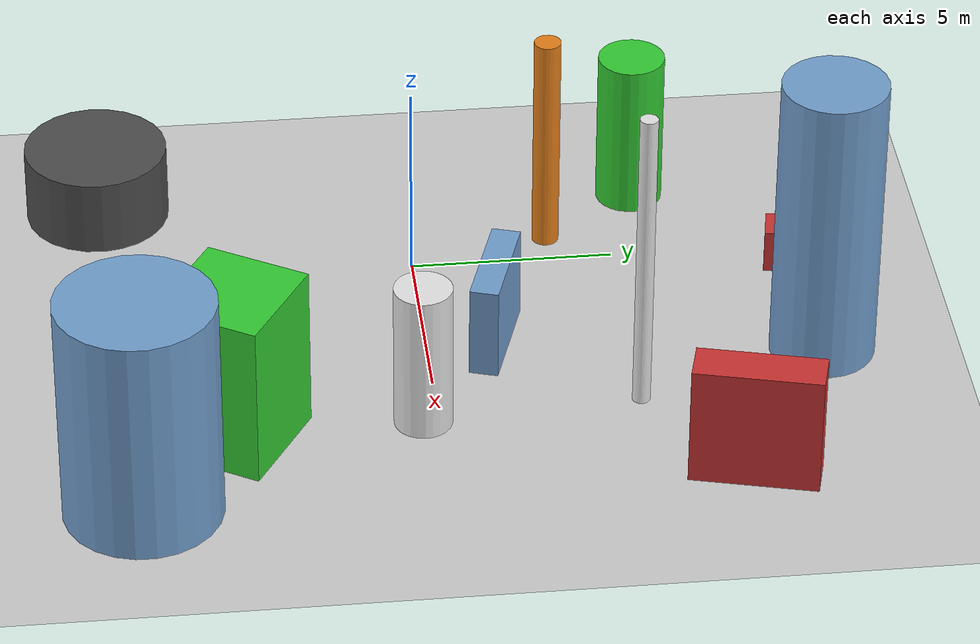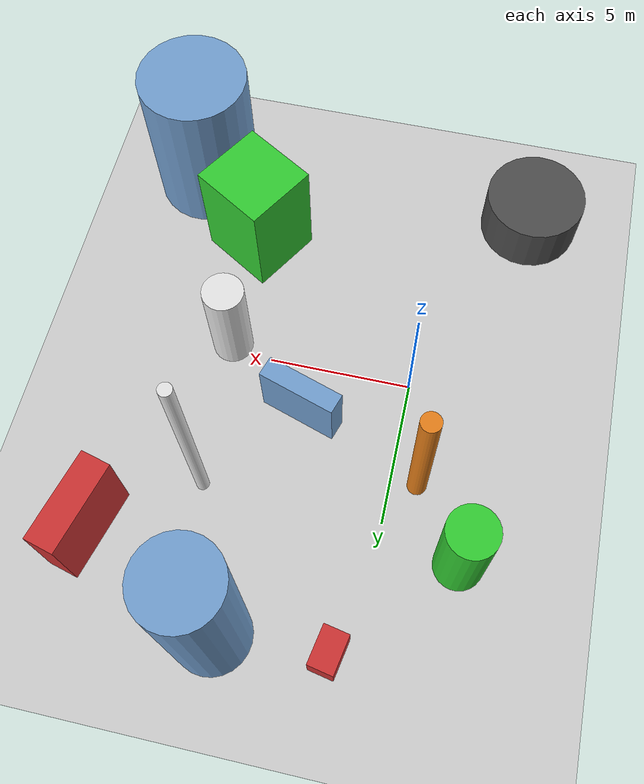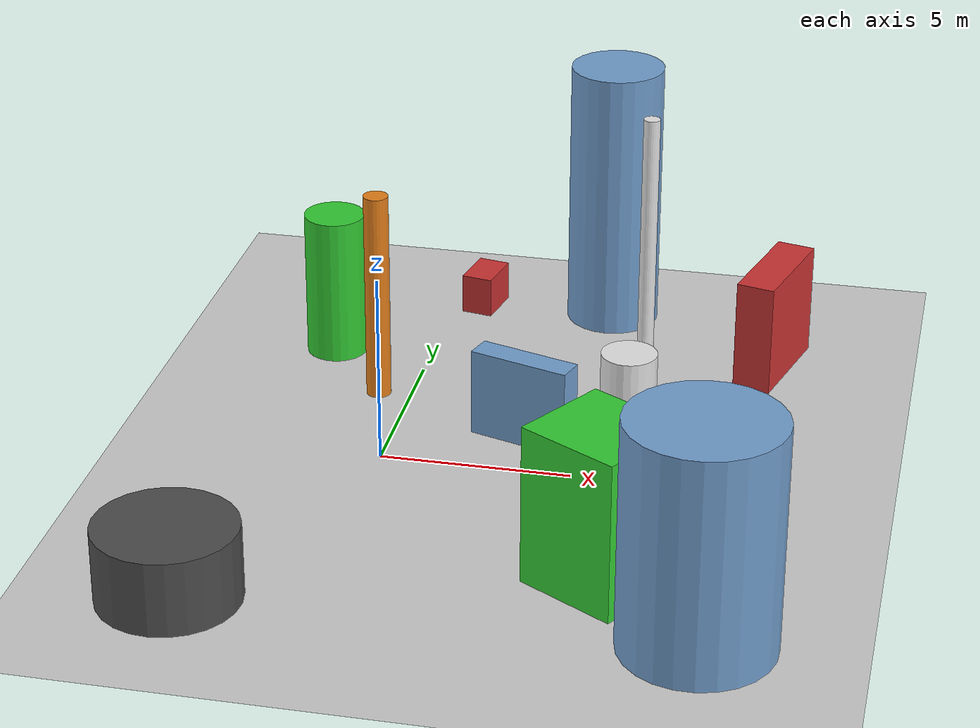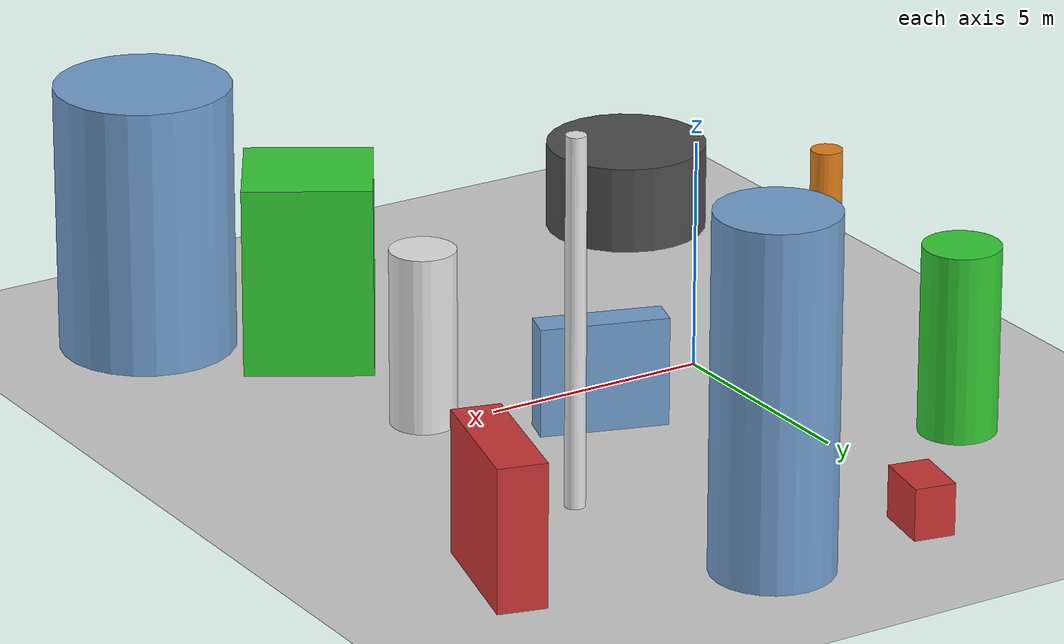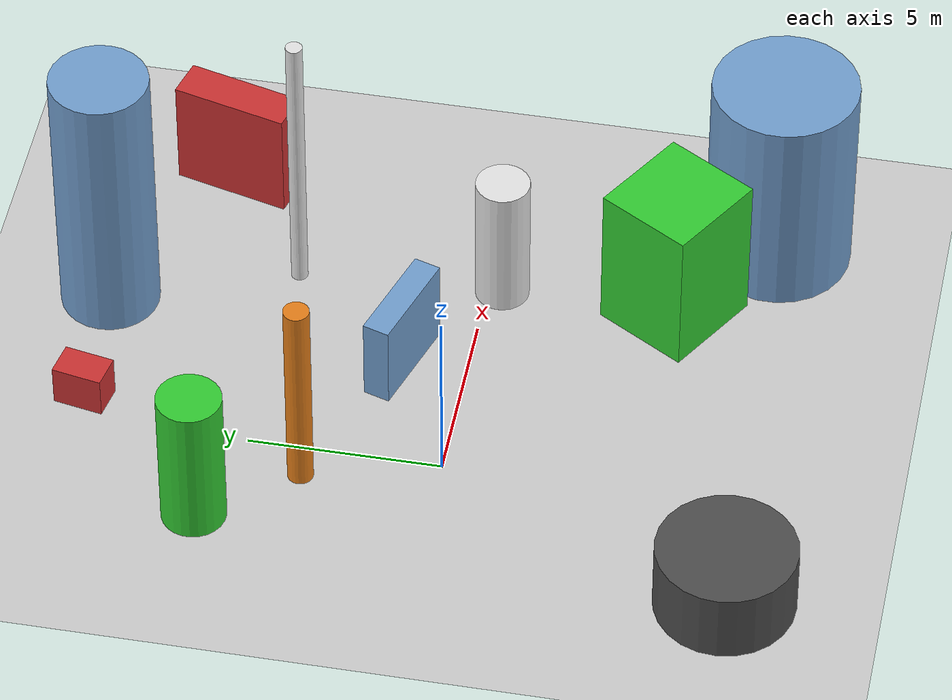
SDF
<?xml version='1.0'?>
<sdf version='1.6'>
  <world name='default'>
    <!-- Sun light -->
    <light name='sun' type='directional'>
      <cast_shadows>1</cast_shadows>
      <pose>0 0 10 0 0 0</pose>
      <diffuse>0.8 0.8 0.8 1</diffuse>
      <specular>0.2 0.2 0.2 1</specular>
      <attenuation>
        <range>1000</range>
        <constant>0.9</constant>
        <linear>0.01</linear>
        <quadratic>0.001</quadratic>
      </attenuation>
      <direction>-0.5 0.1 -0.9</direction>
    </light>

    <!-- Ground plane -->
    <model name='ground_plane'>
      <static>1</static>
      <link name='link'>
        <collision name='collision'>
          <geometry>
            <plane>
              <normal>0 0 1</normal>
              <size>100 100</size>
            </plane>
          </geometry>
          <surface>
            <contact>
              <collide_bitmask>65535</collide_bitmask>
              <ode/>
            </contact>
            <friction>
              <ode>
                <mu>100</mu>
                <mu2>50</mu2>
              </ode>
              <torsional><ode/></torsional>
            </friction>
            <bounce/>
          </surface>
          <max_contacts>10</max_contacts>
        </collision>
        <visual name='visual'>
          <cast_shadows>0</cast_shadows>
          <geometry>
            <plane>
              <normal>0 0 1</normal>
              <size>100 100</size>
            </plane>
          </geometry>
          <material>
            <script>
              <uri>file://media/materials/scripts/gazebo.material</uri>
              <n>Gazebo/Grey</n>
            </script>
          </material>
        </visual>
      </link>
    </model>

    <!-- Environment -->
    <magnetic_field>6e-06 2.3e-05 -4.2e-05</magnetic_field>
    <atmosphere type='adiabatic'/>
    <physics name='default_physics' default='0' type='ode'>
      <gravity>0 0 -9.8</gravity>
      <max_step_size>0.004</max_step_size>
      <real_time_factor>1</real_time_factor>
      <real_time_update_rate>250</real_time_update_rate>
    </physics>
    <scene>
      <ambient>0.4 0.4 0.4 1</ambient>
      <background>0.7 0.7 0.7 1</background>
      <shadows>1</shadows>
    </scene>
    <wind/>
    <spherical_coordinates>
      <surface_model>EARTH_WGS84</surface_model>
      <latitude_deg>0</latitude_deg>
      <longitude_deg>0</longitude_deg>
      <elevation>0</elevation>
      <heading_deg>0</heading_deg>
    </spherical_coordinates>

    <!-- ============ OBSTACLES (11) ============ -->
    <model name='obs_00'>
      <static>1</static>
      <link name='link'>
        <visual name='visual'>
          <geometry>
            <box>
              <size>0.8792 1.3184 1.1251</size>
            </box>
          </geometry>
          <material>
            <script>
              <n>Gazebo/Red</n>
              <uri>file://media/materials/scripts/gazebo.material</uri>
            </script>
            <ambient>0.8 0.2 0.2 1</ambient>
          </material>
        </visual>
        <collision name='collision'>
          <geometry>
            <box>
              <size>0.8792 1.3184 1.1251</size>
            </box>
          </geometry>
          <max_contacts>10</max_contacts>
          <surface>
            <contact><ode/></contact>
            <bounce/>
            <friction>
              <ode><mu>1</mu><mu2>1</mu2></ode>
              <torsional><ode/></torsional>
            </friction>
          </surface>
        </collision>
      </link>
      <pose>0.7882 9.4298 0.5626 0 0 2.9540</pose>
    </model>

    <model name='obs_01'>
      <static>1</static>
      <link name='link'>
        <visual name='visual'>
          <geometry>
            <box>
              <size>2.6353 2.7668 4.1770</size>
            </box>
          </geometry>
          <material>
            <script>
              <n>Gazebo/Green</n>
              <uri>file://media/materials/scripts/gazebo.material</uri>
            </script>
            <ambient>0.2 0.8 0.2 1</ambient>
          </material>
        </visual>
        <collision name='collision'>
          <geometry>
            <box>
              <size>2.6353 2.7668 4.1770</size>
            </box>
          </geometry>
          <max_contacts>10</max_contacts>
          <surface>
            <contact><ode/></contact>
            <bounce/>
            <friction>
              <ode><mu>1</mu><mu2>1</mu2></ode>
              <torsional><ode/></torsional>
            </friction>
          </surface>
        </collision>
      </link>
      <pose>6.6095 -4.8606 2.0885 0 0 1.0305</pose>
    </model>

    <model name='obs_02'>
      <static>1</static>
      <link name='link'>
        <visual name='visual'>
          <geometry>
            <cylinder>
              <radius>0.7091</radius>
              <length>3.8581</length>
            </cylinder>
          </geometry>
          <material>
            <script>
              <n>Gazebo/White</n>
              <uri>file://media/materials/scripts/gazebo.material</uri>
            </script>
            <ambient>0.9 0.9 0.9 1</ambient>
          </material>
        </visual>
        <collision name='collision'>
          <geometry>
            <cylinder>
              <radius>0.7091</radius>
              <length>3.8581</length>
            </cylinder>
          </geometry>
          <max_contacts>10</max_contacts>
          <surface>
            <contact><ode/></contact>
            <bounce/>
            <friction>
              <ode><mu>1</mu><mu2>1</mu2></ode>
              <torsional><ode/></torsional>
            </friction>
          </surface>
        </collision>
      </link>
      <pose>6.4938 -0.3630 1.9290 0 0 2.8569</pose>
    </model>

    <model name='obs_03'>
      <static>1</static>
      <link name='link'>
        <visual name='visual'>
          <geometry>
            <cylinder>
              <radius>0.2188</radius>
              <length>7.9715</length>
            </cylinder>
          </geometry>
          <material>
            <script>
              <n>Gazebo/White</n>
              <uri>file://media/materials/scripts/gazebo.material</uri>
            </script>
            <ambient>0.9 0.9 0.9 1</ambient>
          </material>
        </visual>
        <collision name='collision'>
          <geometry>
            <cylinder>
              <radius>0.2188</radius>
              <length>7.9715</length>
            </cylinder>
          </geometry>
          <max_contacts>10</max_contacts>
          <surface>
            <contact><ode/></contact>
            <bounce/>
            <friction>
              <ode><mu>1</mu><mu2>1</mu2></ode>
              <torsional><ode/></torsional>
            </friction>
          </surface>
        </collision>
      </link>
      <pose>6.1298 4.9312 3.9857 0 0 0.1425</pose>
    </model>

    <model name='obs_04'>
      <static>1</static>
      <link name='link'>
        <visual name='visual'>
          <geometry>
            <cylinder>
              <radius>1.7914</radius>
              <length>1.9496</length>
            </cylinder>
          </geometry>
          <material>
            <script>
              <n>Gazebo/DarkGrey</n>
              <uri>file://media/materials/scripts/gazebo.material</uri>
            </script>
            <ambient>0.3 0.3 0.3 1</ambient>
          </material>
        </visual>
        <collision name='collision'>
          <geometry>
            <cylinder>
              <radius>1.7914</radius>
              <length>1.9496</length>
            </cylinder>
          </geometry>
          <max_contacts>10</max_contacts>
          <surface>
            <contact><ode/></contact>
            <bounce/>
            <friction>
              <ode><mu>1</mu><mu2>1</mu2></ode>
              <torsional><ode/></torsional>
            </friction>
          </surface>
        </collision>
      </link>
      <pose>-3.2257 -7.6966 0.9748 0 0 0.3053</pose>
    </model>

    <model name='obs_05'>
      <static>1</static>
      <link name='link'>
        <visual name='visual'>
          <geometry>
            <cylinder>
              <radius>1.9064</radius>
              <length>5.8754</length>
            </cylinder>
          </geometry>
          <material>
            <script>
              <n>Gazebo/Blue</n>
              <uri>file://media/materials/scripts/gazebo.material</uri>
            </script>
            <ambient>0.447 0.624 0.812 1</ambient>
          </material>
        </visual>
        <collision name='collision'>
          <geometry>
            <cylinder>
              <radius>1.9064</radius>
              <length>5.8754</length>
            </cylinder>
          </geometry>
          <max_contacts>10</max_contacts>
          <surface>
            <contact><ode/></contact>
            <bounce/>
            <friction>
              <ode><mu>1</mu><mu2>1</mu2></ode>
              <torsional><ode/></torsional>
            </friction>
          </surface>
        </collision>
      </link>
      <pose>9.2579 -7.1849 2.9377 0 0 1.1656</pose>
    </model>

    <model name='obs_06'>
      <static>1</static>
      <link name='link'>
        <visual name='visual'>
          <geometry>
            <box>
              <size>3.0979 1.0408 3.0744</size>
            </box>
          </geometry>
          <material>
            <script>
              <n>Gazebo/Red</n>
              <uri>file://media/materials/scripts/gazebo.material</uri>
            </script>
            <ambient>0.8 0.2 0.2 1</ambient>
          </material>
        </visual>
        <collision name='collision'>
          <geometry>
            <box>
              <size>3.0979 1.0408 3.0744</size>
            </box>
          </geometry>
          <max_contacts>10</max_contacts>
          <surface>
            <contact><ode/></contact>
            <bounce/>
            <friction>
              <ode><mu>1</mu><mu2>1</mu2></ode>
              <torsional><ode/></torsional>
            </friction>
          </surface>
        </collision>
      </link>
      <pose>9.3300 7.2028 1.5372 0 0 1.3167</pose>
    </model>

    <model name='obs_07'>
      <static>1</static>
      <link name='link'>
        <visual name='visual'>
          <geometry>
            <cylinder>
              <radius>1.2890</radius>
              <length>7.5734</length>
            </cylinder>
          </geometry>
          <material>
            <script>
              <n>Gazebo/Blue</n>
              <uri>file://media/materials/scripts/gazebo.material</uri>
            </script>
            <ambient>0.447 0.624 0.812 1</ambient>
          </material>
        </visual>
        <collision name='collision'>
          <geometry>
            <cylinder>
              <radius>1.2890</radius>
              <length>7.5734</length>
            </cylinder>
          </geometry>
          <max_contacts>10</max_contacts>
          <surface>
            <contact><ode/></contact>
            <bounce/>
            <friction>
              <ode><mu>1</mu><mu2>1</mu2></ode>
              <torsional><ode/></torsional>
            </friction>
          </surface>
        </collision>
      </link>
      <pose>4.4843 9.5988 3.7867 0 0 2.6191</pose>
    </model>

    <model name='obs_08'>
      <static>1</static>
      <link name='link'>
        <visual name='visual'>
          <geometry>
            <cylinder>
              <radius>0.8355</radius>
              <length>4.1037</length>
            </cylinder>
          </geometry>
          <material>
            <script>
              <n>Gazebo/Green</n>
              <uri>file://media/materials/scripts/gazebo.material</uri>
            </script>
            <ambient>0.2 0.8 0.2 1</ambient>
          </material>
        </visual>
        <collision name='collision'>
          <geometry>
            <cylinder>
              <radius>0.8355</radius>
              <length>4.1037</length>
            </cylinder>
          </geometry>
          <max_contacts>10</max_contacts>
          <surface>
            <contact><ode/></contact>
            <bounce/>
            <friction>
              <ode><mu>1</mu><mu2>1</mu2></ode>
              <torsional><ode/></torsional>
            </friction>
          </surface>
        </collision>
      </link>
      <pose>-2.6845 5.8136 2.0518 0 0 0.1028</pose>
    </model>

    <model name='obs_09'>
      <static>1</static>
      <link name='link'>
        <visual name='visual'>
          <geometry>
            <cylinder>
              <radius>0.3338</radius>
              <length>5.7998</length>
            </cylinder>
          </geometry>
          <material>
            <script>
              <n>Gazebo/Orange</n>
              <uri>file://media/materials/scripts/gazebo.material</uri>
            </script>
            <ambient>0.9 0.5 0.1 1</ambient>
          </material>
        </visual>
        <collision name='collision'>
          <geometry>
            <cylinder>
              <radius>0.3338</radius>
              <length>5.7998</length>
            </cylinder>
          </geometry>
          <max_contacts>10</max_contacts>
          <surface>
            <contact><ode/></contact>
            <bounce/>
            <friction>
              <ode><mu>1</mu><mu2>1</mu2></ode>
              <torsional><ode/></torsional>
            </friction>
          </surface>
        </collision>
      </link>
      <pose>-0.9043 3.4566 2.8999 0 0 2.6875</pose>
    </model>

    <model name='obs_10'>
      <static>1</static>
      <link name='link'>
        <visual name='visual'>
          <geometry>
            <box>
              <size>2.7569 0.7119 2.3794</size>
            </box>
          </geometry>
          <material>
            <script>
              <n>Gazebo/Blue</n>
              <uri>file://media/materials/scripts/gazebo.material</uri>
            </script>
            <ambient>0.447 0.624 0.812 1</ambient>
          </material>
        </visual>
        <collision name='collision'>
          <geometry>
            <box>
              <size>2.7569 0.7119 2.3794</size>
            </box>
          </geometry>
          <max_contacts>10</max_contacts>
          <surface>
            <contact><ode/></contact>
            <bounce/>
            <friction>
              <ode><mu>1</mu><mu2>1</mu2></ode>
              <torsional><ode/></torsional>
            </friction>
          </surface>
        </collision>
      </link>
      <pose>3.4468 1.6912 1.1897 0 0 2.8328</pose>
    </model>

    <!-- GUI camera -->
    <gui fullscreen='0'>
      <camera name='user_camera'>
        <pose>-15 0 18 0 0.85 0.15</pose>
        <view_controller>orbit</view_controller>
        <projection_type>perspective</projection_type>
      </camera>
    </gui>
  </world>
</sdf>
